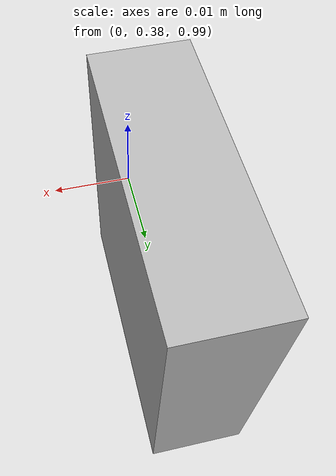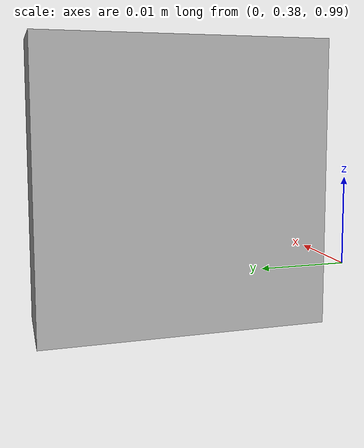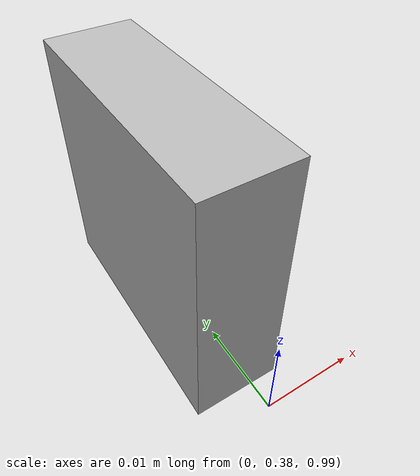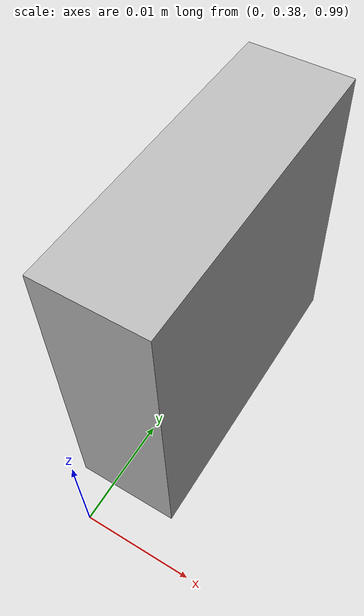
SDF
<?xml version='1.0'?>
<sdf version='1.6'>
  <model name="OV2311">
      <pose>0 0.4 1.0 0 0.0 0.0</pose>
      <link name="OV2311_link">
        <pose>0.0 0.0 0.0 0 0 0</pose>
        <collision name="collision">
          <geometry>
            <box>
              <size>0.01 0.03 0.03</size>
            </box>
          </geometry>
        </collision>
        <visual name="visual">
          <geometry>
            <box>
              <size>0.01 0.03 0.03</size>
            </box>
          </geometry>
        </visual>
        <sensor name="OV2311" type="camera">
          <camera>
            <horizontal_fov>1.0053</horizontal_fov>
            <image>
              <width>1600</width>
              <height>1300</height>
            </image>
            <clip>
              <near>0.1</near>
              <far>100</far>
            </clip>
          </camera>
          <always_on>1</always_on>
          <update_rate>30</update_rate>
          <visualize>true</visualize>
          <topic>OV2311/image</topic>
        </sensor>
      </link>
      <static>true</static>
    </model>
</sdf>
